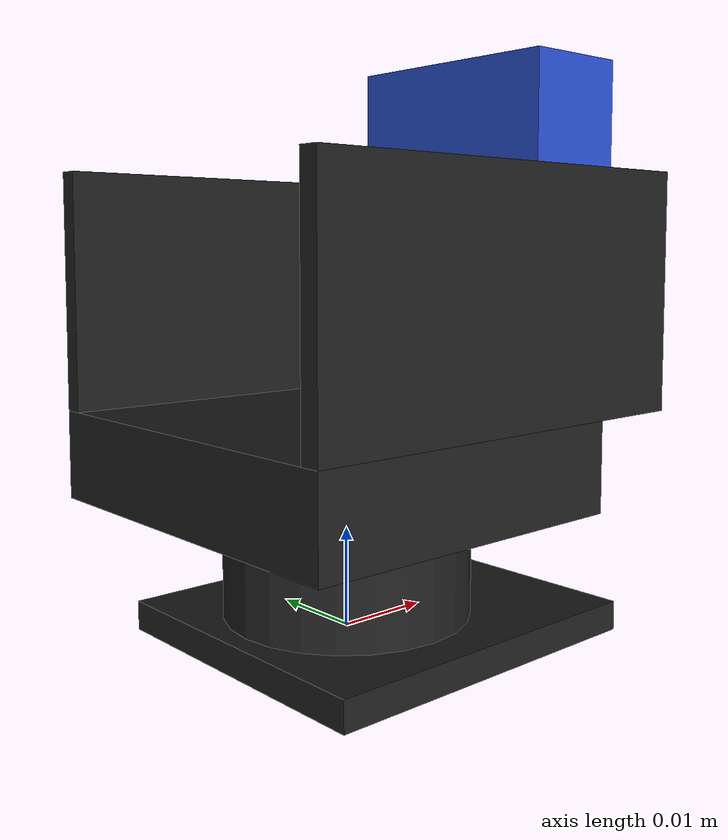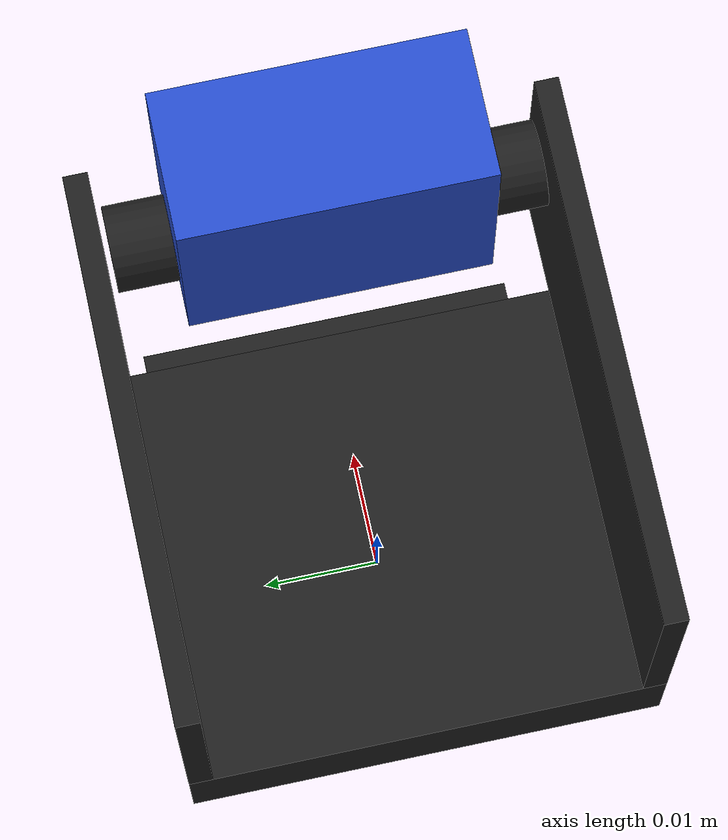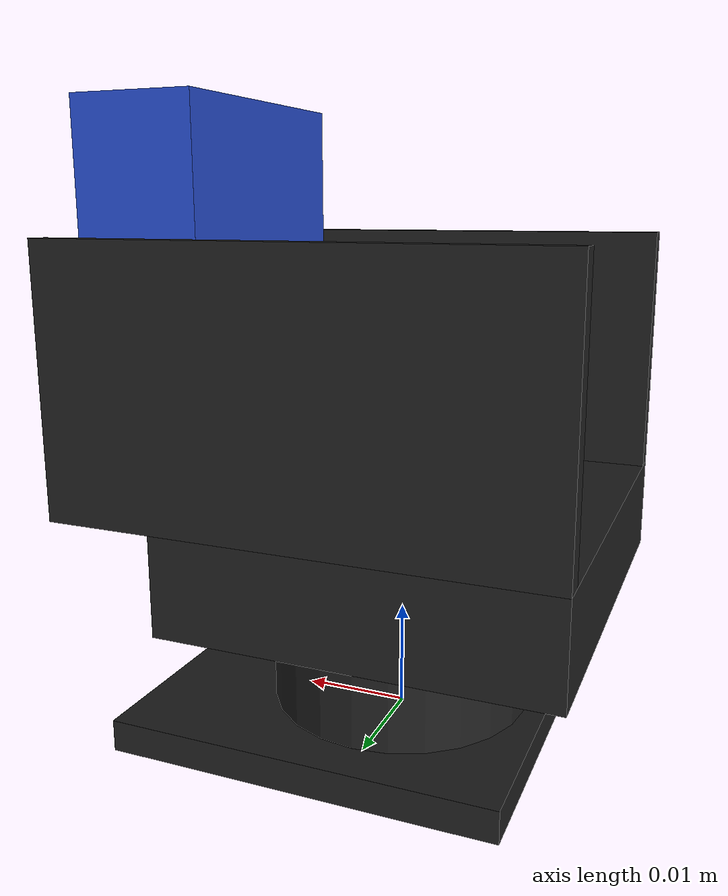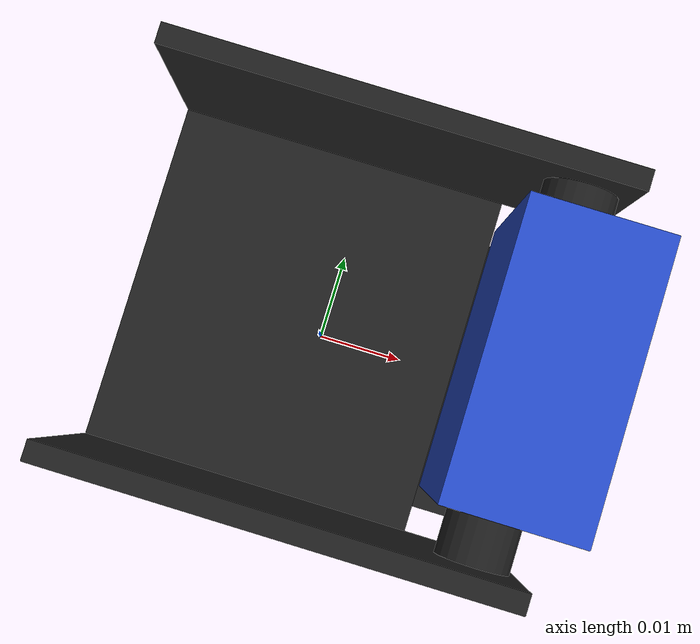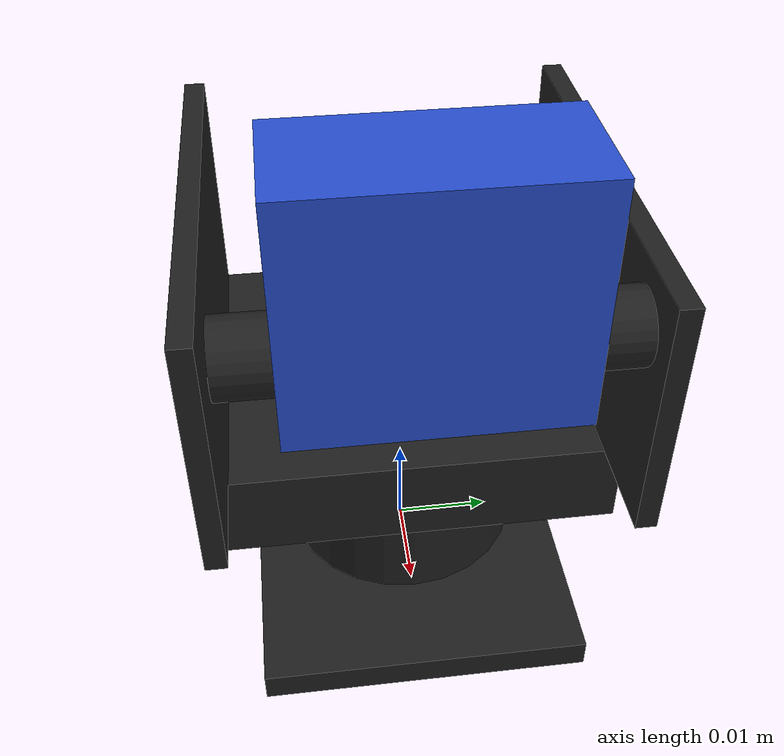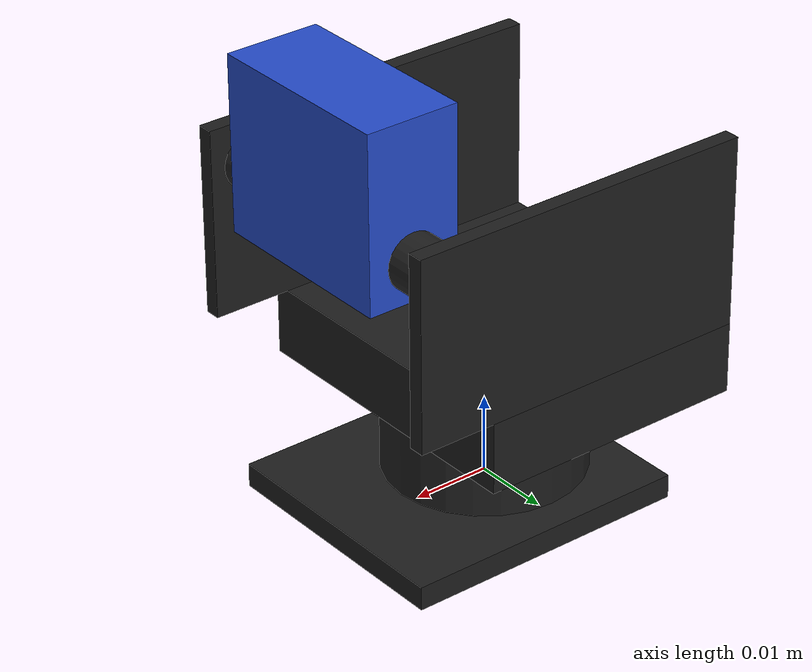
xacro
<?xml version="1.0" ?>
<robot xmlns:xacro="http://ros.org/wiki/xacro">

    <link name="base_pan_tilt">
      <visual>
          <geometry>
              <box size="0.037 0.033 0.003"/>
          </geometry>
          <origin xyz="0.004 0 0" rpy="0 0 0"/>
          <material name="black"/>
      </visual>
      <collision>
          <geometry>
              <box size="0.037 0.033 0.003"/>
          </geometry>
          <origin xyz="0.004 0 0" rpy="0 0 0"/>
      </collision>
      <visual>
          <geometry>
              <cylinder radius="0.0125" length="0.011"/>
          </geometry>
          <origin xyz="0 0 0.007" rpy="0 0 0"/>
          <material name="black"/>
      </visual>
      <collision>
          <geometry>
              <cylinder radius="0.0125" length="0.011"/>
          </geometry>
          <origin xyz="0 0 0.007" rpy="0 0 0"/>
      </collision>
      <inertial>
        <mass value="0.02"/>
        <origin xyz="0 0 0.005" rpy="0 0 0"/>
        <inertia ixx="0.000003" ixy="0.0" ixz="0.0"
                 iyy="0.000003" iyz="0.0"
                 izz="0.000003"/>
      </inertial>
  </link>

  <link name="part_2_link">
      <visual>
          <geometry>
              <box size="0.035 0.040 0.009"/>
          </geometry>
          <origin xyz="-0.0025 0 0" rpy="0 0 0"/>
          <material name="black"/>
      </visual>
      <collision>
          <geometry>
              <box size="0.035 0.040 0.009"/>
          </geometry>
          <origin xyz="-0.0025 0 0" rpy="0 0 0"/>
      </collision>
      <visual>
          <geometry>
              <box size="0.045 0.002 0.024"/>
          </geometry>
          <origin xyz="0.0025 0.019 0.0165" rpy="0 0 0"/>
          <material name="black"/>
      </visual>
      <collision>
          <geometry>
              <box size="0.045 0.002 0.024"/>
          </geometry>
          <origin xyz="0.0025 0.019 0.0165" rpy="0 0 0"/>
      </collision>
      <visual>
          <geometry>
              <box size="0.045 0.002 0.024"/>
          </geometry>
          <origin xyz="0.0025 -0.019 0.0165" rpy="0 0 0"/>
          <material name="black"/>
      </visual>
      <collision>
          <geometry>
              <box size="0.045 0.002 0.024"/>
          </geometry>
          <origin xyz="0.0025 -0.019 0.0165" rpy="0 0 0"/>
      </collision>
      <inertial>
        <mass value="0.03"/>
        <origin xyz="0 0 0.01" rpy="0 0 0"/>
        <inertia ixx="0.00001" ixy="0.0" ixz="0.0"
                 iyy="0.00001" iyz="0.0"
                 izz="0.00001"/>
      </inertial>
  </link>
  <joint name="gripper_roll_joint" type="revolute">
      <parent link="base_pan_tilt"/>
      <child link="part_2_link"/>
      <origin xyz="0 0 0.0172" rpy="0 0 0"/>
      <axis xyz="0 0 1"/>
      <limit lower="-1.57" upper="1.57" effort="10" velocity="2.0"/>
      <dynamics damping="0.5" friction="0.1"/>
  </joint>

  <link name="part_3_link">
      <visual>
          <geometry>
              <box size="0.012 0.025 0.022"/>
          </geometry>
          <origin xyz="0 0 0.006" rpy="0 0 0"/>
          <material name="blue"/>
      </visual>
      <collision>
          <geometry>
              <box size="0.012 0.025 0.022"/>
          </geometry>
          <origin xyz="0 0 0.006" rpy="0 0 0"/>
      </collision>
      <visual>
          <geometry>
              <cylinder radius="0.0035" length="0.005"/>
          </geometry>
          <origin xyz="0 0.015 0" rpy="1.57 0 0"/>
          <material name="black"/>
      </visual>
      <collision>
          <geometry>
              <cylinder radius="0.0035" length="0.005"/>
          </geometry>
          <origin xyz="0 0.015 0" rpy="1.57 0 0"/>
      </collision>
      <visual>
          <geometry>
              <cylinder radius="0.0035" length="0.005"/>
          </geometry>
          <origin xyz="0 -0.015 0" rpy="1.57 0 0"/>
          <material name="black"/>
      </visual>
      <collision>
          <geometry>
              <cylinder radius="0.0035" length="0.005"/>
          </geometry>
          <origin xyz="0 -0.015 0" rpy="1.57 0 0"/>
      </collision>
      <inertial>
        <mass value="0.03"/>
        <origin xyz="0 0 0.006" rpy="0 0 0"/>
        <inertia ixx="0.000005" ixy="0.0" ixz="0.0"
                 iyy="0.000005" iyz="0.0"
                 izz="0.000005"/>
      </inertial>
  </link>
  <joint name="gripper_pitch_joint" type="revolute">
      <parent link="part_2_link"/>
      <child link="part_3_link"/>
      <origin xyz="0.020 0 0.0235" rpy="0 0 0"/>
      <axis xyz="0 1 0"/>
      <limit lower="-1.57" upper="1.57" effort="10" velocity="2.0"/>
      <dynamics damping="0.5" friction="0.1"/>
  </joint>

</robot>
